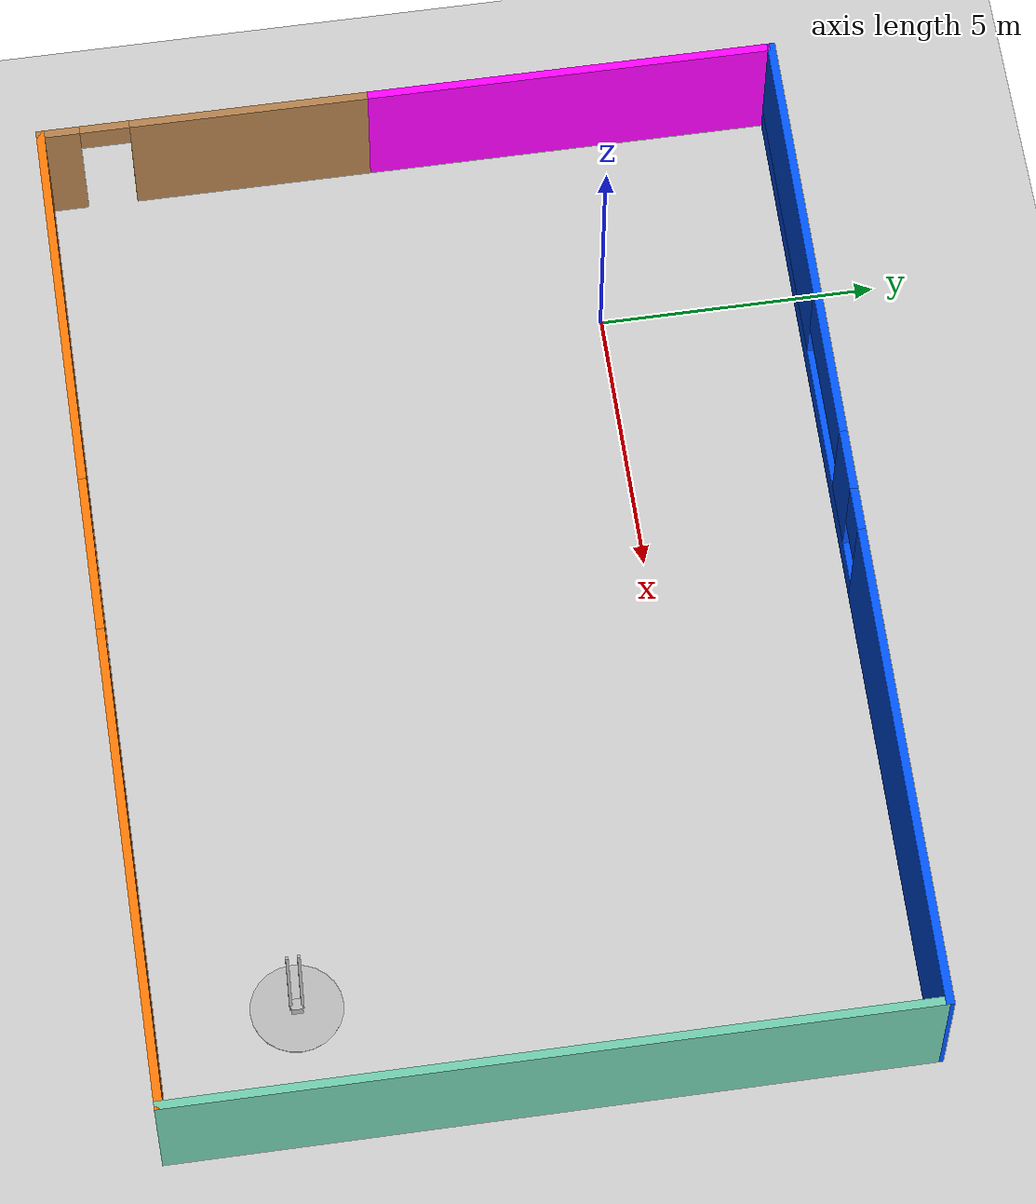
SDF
<sdf version="1.6">
 <world name="default">
  <light name="sun" type="directional">
   <pose>0 0 10 0 -0 0</pose>
   <diffuse>0.8 0.8 0.8 1</diffuse>
   <specular>0.2 0.2 0.2 1</specular>
   <attenuation>
    <range>1000</range>
    <constant>0.9</constant>
    <linear>0.01</linear>
    <quadratic>0.001</quadratic>
   </attenuation>
   <direction>-0.5 0.1 -0.9</direction>
  </light>
  <model name="ground_plane">
   <static>1</static>
   <link name="link">
    <collision name="collision">
     <geometry><plane><normal>0 0 1</normal><size>100 100</size></plane></geometry>
     <surface>
      <contact><collide_bitmask>65535</collide_bitmask></contact>
      <friction><ode><mu>100</mu><mu2>50</mu2></ode></friction>
     </surface>
    </collision>
    <visual name="visual">
     <cast_shadows>0</cast_shadows>
     <geometry><plane><normal>0 0 1</normal><size>100 100</size></plane></geometry>
     <material>
      <script><uri>file://media/materials/scripts/gazebo.material</uri><name>Gazebo/Grey</name></script>
     </material>
    </visual>
   </link>
  </model>
  <gravity>0 0 -9.8</gravity>
  <magnetic_field>6e-06 2.3e-05 -4.2e-05</magnetic_field>
  <atmosphere type="adiabatic"/>
  <physics name="default_physics" default="0" type="ode">
   <max_step_size>0.001</max_step_size>
   <real_time_factor>1</real_time_factor>
   <real_time_update_rate>1000</real_time_update_rate>
  </physics>
  <scene><ambient>0.4 0.4 0.4 1</ambient><background>0.7 0.7 0.7 1</background><shadows>1</shadows></scene>
  <spherical_coordinates>
   <surface_model>EARTH_WGS84</surface_model>
   <latitude_deg>0</latitude_deg>
   <longitude_deg>0</longitude_deg>
   <elevation>0</elevation>
   <heading_deg>0</heading_deg>
  </spherical_coordinates>
  <model name="world">
   <pose>5.58714 -2.99226 0 0 -0 0</pose>
   <link name="Wall_0">
    <pose>-9.425 -3.73182 0 0 0 -1.5708</pose>
    <visual name="Wall_0_Visual_0">
     <pose>-0.840214 0 1.25 0 -0 0</pose>
     <geometry><box><size>4.31957 0.15 2.5</size></box></geometry>
     <material>
      <script><uri>file://media/materials/scripts/gazebo.material</uri><name>Gazebo/Wood</name></script>
      <ambient>0.760784 0.662745 0.627451 1</ambient>
     </material>
     <meta><layer>0</layer></meta>
    </visual>
    <collision name="Wall_0_Collision_0">
     <geometry><box><size>4.31957 0.15 2.5</size></box></geometry>
     <pose>-0.840214 0 1.25 0 -0 0</pose>
    </collision>
    <visual name="Wall_0_Visual_1">
     <pose>2.60979 0 1.25 0 -0 0</pose>
     <geometry><box><size>0.780428 0.15 2.5</size></box></geometry>
     <material>
      <script><uri>file://media/materials/scripts/gazebo.material</uri><name>Gazebo/Wood</name></script>
      <ambient>0.760784 0.662745 0.627451 1</ambient>
     </material>
     <meta><layer>0</layer></meta>
    </visual>
    <collision name="Wall_0_Collision_1">
     <geometry><box><size>0.780428 0.15 2.5</size></box></geometry>
     <pose>2.60979 0 1.25 0 -0 0</pose>
    </collision>
    <visual name="Wall_0_Visual_2">
     <pose>1.76957 0 2.25 0 -0 0</pose>
     <geometry><box><size>0.9 0.15 0.5</size></box></geometry>
     <material>
      <script><uri>file://media/materials/scripts/gazebo.material</uri><name>Gazebo/Wood</name></script>
      <ambient>0.760784 0.662745 0.627451 1</ambient>
     </material>
     <meta><layer>0</layer></meta>
    </visual>
    <collision name="Wall_0_Collision_2">
     <geometry><box><size>0.9 0.15 0.5</size></box></geometry>
     <pose>1.76957 0 2.25 0 -0 0</pose>
    </collision>
   </link>
   <link name="Wall_1">
    <pose>0 -6.65682 0 0 -0 0</pose>
    <visual name="Wall_1_Visual_0">
     <pose>-5.90855 0 1.25 0 -0 0</pose>
     <geometry><box><size>7.18291 0.15 2.5</size></box></geometry>
     <material>
      <script><uri>file://media/materials/scripts/gazebo.material</uri><name>Gazebo/Grey</name></script>
      <ambient>0.996078 0.47451 0.0196078 1</ambient>
     </material>
     <meta><layer>0</layer></meta>
    </visual>
    <collision name="Wall_1_Collision_0">
     <geometry><box><size>7.18291 0.15 2.5</size></box></geometry>
     <pose>-5.90855 0 1.25 0 -0 0</pose>
    </collision>
    <visual name="Wall_1_Visual_1">
     <pose>3.59145 0 0.25 0 -0 0</pose>
     <geometry><box><size>11.8171 0.15 0.5</size></box></geometry>
     <material>
      <script><uri>file://media/materials/scripts/gazebo.material</uri><name>Gazebo/Grey</name></script>
      <ambient>0.996078 0.47451 0.0196078 1</ambient>
     </material>
     <meta><layer>0</layer></meta>
    </visual>
    <collision name="Wall_1_Collision_1">
     <geometry><box><size>11.8171 0.15 0.5</size></box></geometry>
     <pose>3.59145 0 0.25 0 -0 0</pose>
    </collision>
    <visual name="Wall_1_Visual_2">
     <pose>5.06414 0 1.5 0 -0 0</pose>
     <geometry><box><size>8.87172 0.15 2</size></box></geometry>
     <material>
      <script><uri>file://media/materials/scripts/gazebo.material</uri><name>Gazebo/Grey</name></script>
      <ambient>0.996078 0.47451 0.0196078 1</ambient>
     </material>
     <meta><layer>0</layer></meta>
    </visual>
    <collision name="Wall_1_Collision_2">
     <geometry><box><size>8.87172 0.15 2</size></box></geometry>
     <pose>5.06414 0 1.5 0 -0 0</pose>
    </collision>
    <visual name="Wall_1_Visual_3">
     <pose>-0.844408 0 1.9 0 -0 0</pose>
     <geometry><box><size>2.94537 0.15 1.2</size></box></geometry>
     <material>
      <script><uri>file://media/materials/scripts/gazebo.material</uri><name>Gazebo/Grey</name></script>
      <ambient>0.996078 0.47451 0.0196078 1</ambient>
     </material>
     <meta><layer>0</layer></meta>
    </visual>
    <collision name="Wall_1_Collision_3">
     <geometry><box><size>2.94537 0.15 1.2</size></box></geometry>
     <pose>-0.844408 0 1.9 0 -0 0</pose>
    </collision>
   </link>
   <link name="Wall_2">
    <collision name="Wall_2_Collision">
     <geometry><box><size>13.25 0.15 2.5</size></box></geometry>
     <pose>0 0 1.25 0 -0 0</pose>
    </collision>
    <visual name="Wall_2_Visual">
     <pose>0 0 1.25 0 -0 0</pose>
     <geometry><box><size>13.25 0.15 2.5</size></box></geometry>
     <material>
      <script><uri>file://media/materials/scripts/gazebo.material</uri><name>Gazebo/Grey</name></script>
      <ambient>0.435294 0.796078 0.67451 1</ambient>
     </material>
     <meta><layer>0</layer></meta>
    </visual>
    <pose>9.425 -0.106821 0 0 -0 1.5708</pose>
   </link>
   <link name="Wall_3">
    <pose>0 6.54958 0 0 -0 3.1303</pose>
    <visual name="Wall_3_Visual_0">
     <pose>-5.03282 0 1.25 0 -0 0</pose>
     <geometry><box><size>8.93556 0.15 2.5</size></box></geometry>
     <material>
      <script><uri>file://media/materials/scripts/gazebo.material</uri><name>Gazebo/Grey</name></script>
      <ambient>0 0.333333 1 1</ambient>
     </material>
     <meta><layer>0</layer></meta>
    </visual>
    <collision name="Wall_3_Collision_0">
     <geometry><box><size>8.93556 0.15 2.5</size></box></geometry>
     <pose>-5.03282 0 1.25 0 -0 0</pose>
    </collision>
    <visual name="Wall_3_Visual_1">
     <pose>4.46778 0 0.25 0 -0 0</pose>
     <geometry><box><size>10.0656 0.15 0.5</size></box></geometry>
     <material>
      <script><uri>file://media/materials/scripts/gazebo.material</uri><name>Gazebo/Grey</name></script>
      <ambient>0 0.333333 1 1</ambient>
     </material>
     <meta><layer>0</layer></meta>
    </visual>
    <collision name="Wall_3_Collision_1">
     <geometry><box><size>10.0656 0.15 0.5</size></box></geometry>
     <pose>4.46778 0 0.25 0 -0 0</pose>
    </collision>
    <visual name="Wall_3_Visual_2">
     <pose>0.809593 0 1.5 0 -0 0</pose>
     <geometry><box><size>1.14926 0.15 2</size></box></geometry>
     <material>
      <script><uri>file://media/materials/scripts/gazebo.material</uri><name>Gazebo/Grey</name></script>
      <ambient>0 0.333333 1 1</ambient>
     </material>
     <meta><layer>0</layer></meta>
    </visual>
    <collision name="Wall_3_Collision_2">
     <geometry><box><size>1.14926 0.15 2</size></box></geometry>
     <pose>0.809593 0 1.5 0 -0 0</pose>
    </collision>
    <visual name="Wall_3_Visual_3">
     <pose>6.84547 0 1.5 0 -0 0</pose>
     <geometry><box><size>5.31027 0.15 2</size></box></geometry>
     <material>
      <script><uri>file://media/materials/scripts/gazebo.material</uri><name>Gazebo/Grey</name></script>
      <ambient>0 0.333333 1 1</ambient>
     </material>
     <meta><layer>0</layer></meta>
    </visual>
    <collision name="Wall_3_Collision_3">
     <geometry><box><size>5.31027 0.15 2</size></box></geometry>
     <pose>6.84547 0 1.5 0 -0 0</pose>
    </collision>
    <visual name="Wall_3_Visual_4">
     <pose>-0.165039 0 1.9 0 -0 0</pose>
     <geometry><box><size>0.8 0.15 1.2</size></box></geometry>
     <material>
      <script><uri>file://media/materials/scripts/gazebo.material</uri><name>Gazebo/Grey</name></script>
      <ambient>0 0.333333 1 1</ambient>
     </material>
     <meta><layer>0</layer></meta>
    </visual>
    <collision name="Wall_3_Collision_4">
     <geometry><box><size>0.8 0.15 1.2</size></box></geometry>
     <pose>-0.165039 0 1.9 0 -0 0</pose>
    </collision>
    <visual name="Wall_3_Visual_5">
     <pose>2.78728 0 1.9 0 -0 0</pose>
     <geometry><box><size>2.80611 0.15 1.2</size></box></geometry>
     <material>
      <script><uri>file://media/materials/scripts/gazebo.material</uri><name>Gazebo/Grey</name></script>
      <ambient>0 0.333333 1 1</ambient>
     </material>
     <meta><layer>0</layer></meta>
    </visual>
    <collision name="Wall_3_Collision_5">
     <geometry><box><size>2.80611 0.15 1.2</size></box></geometry>
     <pose>2.78728 0 1.9 0 -0 0</pose>
    </collision>
   </link>
   <link name="Wall_4">
    <collision name="Wall_4_Collision">
     <geometry><box><size>8 0.15 2.5</size></box></geometry>
     <pose>0 0 1.25 0 -0 0</pose>
    </collision>
    <visual name="Wall_4_Visual">
     <pose>0 0 1.25 0 -0 0</pose>
     <geometry><box><size>8 0.15 2.5</size></box></geometry>
     <material>
      <script><uri>file://media/materials/scripts/gazebo.material</uri><name>Gazebo/Grey</name></script>
      <ambient>1 0 1 1</ambient>
     </material>
     <meta><layer>0</layer></meta>
    </visual>
    <pose>-9.425 2.62458 0 0 0 -1.5708</pose>
   </link>
   <static>1</static>
  </model>
  <model name="mass_on_rails">
   <link name="base">
    <inertial>
     <mass>100</mass>
     <inertia><ixx>1</ixx><ixy>0</ixy><ixz>0</ixz><iyy>1</iyy><iyz>0</iyz><izz>1</izz></inertia>
    </inertial>
    <visual name="vis_base">
     <pose>0 0 0.01 0 -0 0</pose>
     <geometry><cylinder><radius>0.8</radius><length>0.01</length></cylinder></geometry>
    </visual>
    <collision name="col_base">
     <pose>0 0 0.01 0 -0 0</pose>
     <geometry><cylinder><radius>0.8</radius><length>0.01</length></cylinder></geometry>
    </collision>
    <visual name="vis_rail1">
     <pose>0 0.1 1.1 0 -0 0</pose>
     <geometry><box><size>0.05 0.05 2.2</size></box></geometry>
    </visual>
    <collision name="col_rail1">
     <pose>0 0.1 1.1 0 -0 0</pose>
     <geometry><box><size>0.05 0.05 2.2</size></box></geometry>
    </collision>
    <visual name="vis_rail2">
     <pose>0 -0.1 1.1 0 -0 0</pose>
     <geometry><box><size>0.05 0.05 2.2</size></box></geometry>
    </visual>
    <collision name="col_rail2">
     <pose>0 -0.1 1.1 0 -0 0</pose>
     <geometry><box><size>0.05 0.05 2.2</size></box></geometry>
    </collision>
   </link>
   <link name="mass">
    <inertial>
     <mass>0.1</mass>
     <pose>0 0 0.1 0 -0 0</pose>
     <inertia><ixx>0.00067</ixx><ixy>0</ixy><ixz>0</ixz><iyy>0.00067</iyy><iyz>0</iyz><izz>0.00067</izz></inertia>
    </inertial>
    <visual name="visual">
     <pose>0 0 0.1 0 -0 0</pose>
     <geometry><box><size>0.2 0.2 0.2</size></box></geometry>
    </visual>
    <collision name="collision">
     <pose>0 0 0.1 0 -0 0</pose>
     <geometry><box><size>0.2 0.2 0.2</size></box></geometry>
    </collision>
   </link>
   <joint name="joint" type="prismatic">
    <parent>base</parent>
    <child>mass</child>
    <axis>
     <dynamics>
      <damping>0.01</damping>
      <friction>0.01</friction>
      <spring_reference>0</spring_reference>
      <spring_stiffness>0</spring_stiffness>
     </dynamics>
     <xyz>0 0 1</xyz>
     <limit><lower>0</lower><upper>2</upper></limit>
     <use_parent_model_frame>0</use_parent_model_frame>
    </axis>
   </joint>
   <pose>12.5919 -7.14938 0 -1e-06 3e-06 -1.1e-05</pose>
  </model>
 </world>
</sdf>
